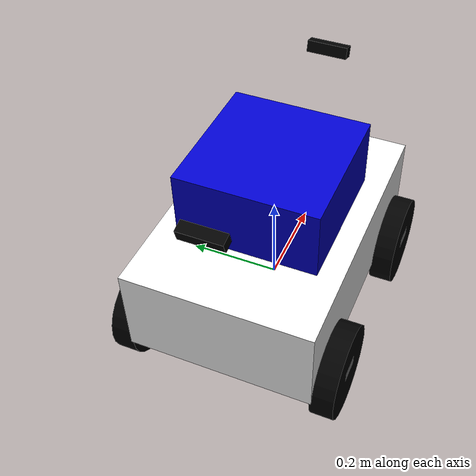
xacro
<?xml version="1.0"?>
<robot name="agri_bot" xmlns:xacro="http://www.ros.org/wiki/xacro">

  <material name="white"> <color rgba="1 1 1 1"/> </material>
  <material name="blue">  <color rgba="0 0 0.8 1"/> </material>
  <material name="black"> <color rgba="0 0 0 1"/> </material>
  <material name="gray">  <color rgba="0.5 0.5 0.5 1"/> </material>

  <link name="base_footprint"/>
  <joint name="base_joint" type="fixed">
    <parent link="base_footprint"/>
    <child link="base_link"/>
    <origin xyz="0 0 0.1" rpy="0 0 0"/>
  </joint>

  <link name="base_link">
    <visual>
      <geometry><box size="0.6 0.4 0.2"/></geometry>
      <material name="white"/>
    </visual>
    <collision>
      <geometry><box size="0.6 0.4 0.2"/></geometry>
    </collision>
    <inertial>
      <mass value="20.0"/>
      <inertia ixx="0.3" ixy="0" ixz="0" iyy="0.7" iyz="0" izz="0.7"/>
    </inertial>
  </link>

  <link name="tank_link">
    <visual>
      <geometry><box size="0.3 0.3 0.15"/></geometry>
      <material name="blue"/>
    </visual>
    <inertial>
      <mass value="2.0"/>
      <inertia ixx="0.01" ixy="0" ixz="0" iyy="0.01" iyz="0" izz="0.01"/>
    </inertial>
  </link>
  <joint name="tank_joint" type="fixed">
    <parent link="base_link"/>
    <child link="tank_link"/>
    <origin xyz="0 0 0.175" rpy="0 0 0"/>
  </joint>

  <!-- 4WS 바퀴 매크로                  -->
  <xacro:macro name="wheel_4ws" params="prefix x y">
    <link name="${prefix}_steering_link">
      <visual>
        <geometry><box size="0.05 0.05 0.05"/></geometry>
        <material name="gray"/>
      </visual>
      <inertial>
        <mass value="0.1"/>
        <inertia ixx="0.001" ixy="0" ixz="0" iyy="0.001" iyz="0" izz="0.001"/>
      </inertial>
    </link>

    <joint name="${prefix}_steering_joint" type="revolute">
      <parent link="base_link"/>
      <child link="${prefix}_steering_link"/>
      <origin xyz="${x} ${y} -0.1" rpy="0 0 0"/>
      <axis xyz="0 0 1"/>
      <limit lower="-1.5707" upper="1.5707" effort="10.0" velocity="1.0"/>
      <dynamics damping="0.01" friction="0.01"/>
    </joint>

    <link name="${prefix}_wheel">
      <visual>
        <origin rpy="1.5707 0 0" xyz="0 0 0"/>
        <geometry><cylinder length="0.05" radius="0.1"/></geometry>
        <material name="black"/>
      </visual>
      <collision>
        <origin rpy="1.5707 0 0" xyz="0 0 0"/>
        <geometry><cylinder length="0.05" radius="0.1"/></geometry>
      </collision>
      <inertial>
        <mass value="1.0"/>
        <inertia ixx="0.005" ixy="0" ixz="0" iyy="0.005" iyz="0" izz="0.005"/>
      </inertial>
    </link>

    <joint name="${prefix}_wheel_joint" type="continuous">
      <parent link="${prefix}_steering_link"/>
      <child link="${prefix}_wheel"/>
      <origin xyz="0 0 0" rpy="0 0 0"/>
      <axis xyz="0 1 0"/>
      <dynamics damping="0.01" friction="0.0"/>
    </joint>

    <gazebo reference="${prefix}_wheel">
      <material>Gazebo/Black</material>
      <mu1>2.0</mu1>
      <mu2>2.0</mu2>
      <kp>1e6</kp>
      <kd>1.0</kd>
    </gazebo>
    <gazebo reference="${prefix}_steering_link">
      <material>Gazebo/Grey</material>
    </gazebo>
  </xacro:macro>

  <xacro:wheel_4ws prefix="front_left"  x=" 0.2" y=" 0.22"/>
  <xacro:wheel_4ws prefix="front_right" x=" 0.2" y="-0.22"/>
  <xacro:wheel_4ws prefix="rear_left"   x="-0.2" y=" 0.22"/>
  <xacro:wheel_4ws prefix="rear_right"  x="-0.2" y="-0.22"/>

  <!-- LiDAR                            -->
  <link name="laser_frame">
    <visual>
      <geometry><cylinder length="0.05" radius="0.05"/></geometry>
      <material name="black"/>
    </visual>
    <inertial>
      <mass value="0.1"/>
      <inertia ixx="0.001" ixy="0" ixz="0" iyy="0.001" iyz="0" izz="0.001"/>
    </inertial>
  </link>
  <joint name="laser_joint" type="fixed">
    <parent link="base_link"/>
    <child link="laser_frame"/>
    <origin xyz="0 0 0.15" rpy="0 0 0"/>
  </joint>

  <!-- 전방 카메라                       -->
  <link name="camera_front_link">
    <visual>
      <geometry><box size="0.025 0.09 0.025"/></geometry>
      <material name="black"/>
    </visual>
    <inertial>
      <mass value="0.072"/>
      <inertia ixx="0.001" ixy="0" ixz="0"
               iyy="0.001" iyz="0" izz="0.001"/>
    </inertial>
  </link>
  <joint name="camera_front_joint" type="fixed">
    <parent link="base_link"/>
    <child link="camera_front_link"/>
    <origin xyz="0.31 0 0.3" rpy="0 0.26 0"/>
  </joint>

  <!-- 후방 카메라                       -->
  <link name="camera_rear_link">
    <visual>
      <geometry><box size="0.025 0.09 0.025"/></geometry>
      <material name="black"/>
    </visual>
    <inertial>
      <mass value="0.072"/>
      <inertia ixx="0.001" ixy="0" ixz="0"
               iyy="0.001" iyz="0" izz="0.001"/>
    </inertial>
  </link>
  <joint name="camera_rear_joint" type="fixed">
    <parent link="base_link"/>
    <child link="camera_rear_link"/>
    <origin xyz="-0.31 0 0.3" rpy="0 0.26 3.14159"/>
  </joint>

  <!-- ros2_control 인터페이스          -->
  <ros2_control name="agri_bot_hardware" type="system">
    <hardware>
      <plugin>gazebo_ros2_control/GazeboSystem</plugin>
    </hardware>

    <joint name="front_left_steering_joint">
      <command_interface name="position">
        <param name="min">-1.5707</param>
        <param name="max"> 1.5707</param>
      </command_interface>
      <state_interface name="position"/>
      <state_interface name="velocity"/>
    </joint>
    <joint name="front_right_steering_joint">
      <command_interface name="position">
        <param name="min">-1.5707</param>
        <param name="max"> 1.5707</param>
      </command_interface>
      <state_interface name="position"/>
      <state_interface name="velocity"/>
    </joint>
    <joint name="rear_left_steering_joint">
      <command_interface name="position">
        <param name="min">-1.5707</param>
        <param name="max"> 1.5707</param>
      </command_interface>
      <state_interface name="position"/>
      <state_interface name="velocity"/>
    </joint>
    <joint name="rear_right_steering_joint">
      <command_interface name="position">
        <param name="min">-1.5707</param>
        <param name="max"> 1.5707</param>
      </command_interface>
      <state_interface name="position"/>
      <state_interface name="velocity"/>
    </joint>

    <joint name="front_left_wheel_joint">
      <command_interface name="velocity">
        <param name="min">-10</param>
        <param name="max"> 10</param>
      </command_interface>
      <state_interface name="position"/>
      <state_interface name="velocity"/>
    </joint>
    <joint name="front_right_wheel_joint">
      <command_interface name="velocity">
        <param name="min">-10</param>
        <param name="max"> 10</param>
      </command_interface>
      <state_interface name="position"/>
      <state_interface name="velocity"/>
    </joint>
    <joint name="rear_left_wheel_joint">
      <command_interface name="velocity">
        <param name="min">-10</param>
        <param name="max"> 10</param>
      </command_interface>
      <state_interface name="position"/>
      <state_interface name="velocity"/>
    </joint>
    <joint name="rear_right_wheel_joint">
      <command_interface name="velocity">
        <param name="min">-10</param>
        <param name="max"> 10</param>
      </command_interface>
      <state_interface name="position"/>
      <state_interface name="velocity"/>
    </joint>
  </ros2_control>

  <!-- gazebo_ros2_control 플러그인 -->
  <gazebo>
    <plugin filename="libgazebo_ros2_control.so"
            name="gazebo_ros2_control">
      <ros>
        <namespace>/</namespace>
      </ros>
      <robotNamespace>/</robotNamespace>
      <parameters>$(find agri_bot_description)/param/ros2_control.yaml</parameters>
    </plugin>
  </gazebo>

  <!-- LiDAR 플러그인 -->
  <gazebo reference="laser_frame">
    <material>Gazebo/Black</material>
    <sensor name="laser" type="ray">
      <pose>0 0 0 0 0 0</pose>
      <always_on>true</always_on>
      <visualize>true</visualize>
      <update_rate>10</update_rate>
      <ray>
        <scan>
          <horizontal>
            <samples>360</samples>
            <resolution>1.0</resolution>
            <min_angle>-3.14159</min_angle>
            <max_angle>3.14159</max_angle>
          </horizontal>
        </scan>
        <range>
          <min>0.12</min>
          <max>10.0</max>
          <resolution>0.01</resolution>
        </range>
      </ray>
      <plugin name="laserscan" filename="libgazebo_ros_ray_sensor.so">
        <ros>
          <remapping>~/out:=scan</remapping>
        </ros>
        <output_type>sensor_msgs/LaserScan</output_type>
        <frame_name>laser_frame</frame_name>
      </plugin>
    </sensor>
  </gazebo>

  <!-- 전방 카메라 Gazebo depth 플러그인 -->
  <gazebo reference="camera_front_link">
    <sensor name="camera_front" type="depth">
      <always_on>true</always_on>
      <visualize>false</visualize>
      <update_rate>15</update_rate>
      <camera>
        <horizontal_fov>1.047</horizontal_fov>
        <image>
          <width>640</width>
          <height>480</height>
          <format>R8G8B8</format>
        </image>
        <clip>
          <near>0.1</near>
          <far>8.0</far>
        </clip>
      </camera>
      <plugin name="camera_front_plugin"
              filename="libgazebo_ros_camera.so">
        <ros>
          <remapping>image_raw:=/camera/front/color/image_raw</remapping>
          <remapping>camera_info:=/camera/front/color/camera_info</remapping>
          <remapping>depth/image_raw:=/camera/front/depth/image_raw</remapping>
          <remapping>depth/camera_info:=/camera/front/depth/camera_info</remapping>
          <remapping>points:=/camera/front/depth/color/points</remapping>
        </ros>
        <frame_name>camera_front_link</frame_name>
        <min_depth>0.1</min_depth>
        <max_depth>8.0</max_depth>
      </plugin>
    </sensor>
  </gazebo>

  <!-- 후방 카메라 Gazebo depth 플러그인 -->
  <gazebo reference="camera_rear_link">
    <sensor name="camera_rear" type="depth">
      <always_on>true</always_on>
      <visualize>false</visualize>
      <update_rate>15</update_rate>
      <camera>
        <horizontal_fov>1.047</horizontal_fov>
        <image>
          <width>640</width>
          <height>480</height>
          <format>R8G8B8</format>
        </image>
        <clip>
          <near>0.1</near>
          <far>8.0</far>
        </clip>
      </camera>
      <plugin name="camera_rear_plugin"
              filename="libgazebo_ros_camera.so">
        <ros>
          <remapping>image_raw:=/camera/rear/color/image_raw</remapping>
          <remapping>camera_info:=/camera/rear/color/camera_info</remapping>
          <remapping>depth/image_raw:=/camera/rear/depth/image_raw</remapping>
          <remapping>depth/camera_info:=/camera/rear/depth/camera_info</remapping>
          <remapping>points:=/camera/rear/depth/color/points</remapping>
        </ros>
        <frame_name>camera_rear_link</frame_name>
        <min_depth>0.1</min_depth>
        <max_depth>8.0</max_depth>
      </plugin>
    </sensor>
  </gazebo>

</robot>
